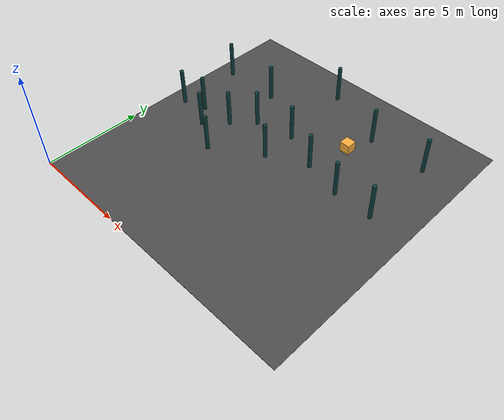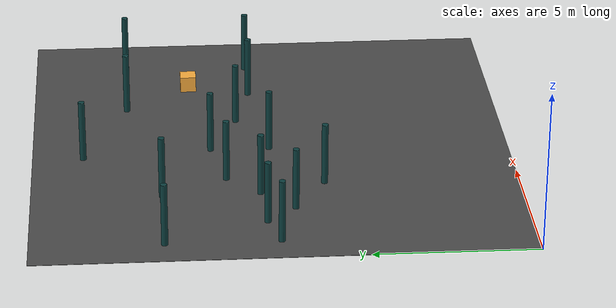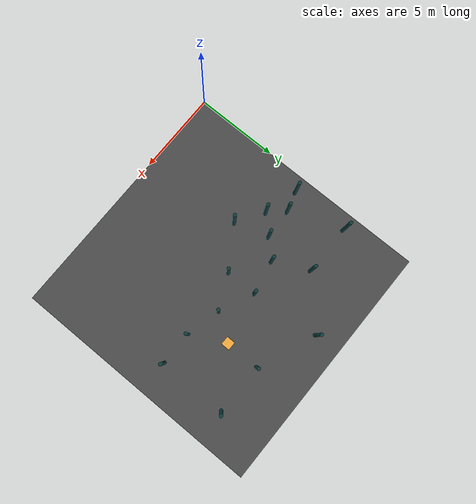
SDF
<sdf version="1.6">
 <world name="default">
  <model name="env_plane">
   <link name="link">
    <inertial>
     <mass>1</mass>
     <inertia><ixx>1</ixx><ixy>0</ixy><ixz>0</ixz><iyy>1</iyy><iyz>0</iyz><izz>1</izz></inertia>
    </inertial>
    <visual name="visual">
     <cast_shadows>0</cast_shadows>
     <geometry><box><size>15 15 0.01</size></box></geometry>
     <material>
      <script>
       <uri>model://asphalt_plane/materials/scripts</uri>
       <uri>model://asphalt_plane/materials/textures</uri>
       <name>vrc/asphalt</name>
      </script>
      <shader type="pixel"><normal_map>__default__</normal_map></shader>
      <diffuse>0.7 0.7 0.7 1</diffuse>
      <ambient>0.5 0.5 0.5 1</ambient>
      <specular>0.5 0.5 0.5 1</specular>
      <emissive>0.7 0.7 0.7 1</emissive>
     </material>
    </visual>
    <collision name="collision">
     <geometry><box><size>20 20 0.1</size></box></geometry>
     <surface>
      <friction>
       <ode><mu>1</mu><mu2>1</mu2><fdir1>0 0 0</fdir1><slip1>0</slip1><slip2>0</slip2></ode>
       <torsional>
        <coefficient>1</coefficient>
        <patch_radius>0</patch_radius>
        <surface_radius>0</surface_radius>
        <use_patch_radius>1</use_patch_radius>
        <ode><slip>0</slip></ode>
       </torsional>
      </friction>
      <bounce><restitution_coefficient>0</restitution_coefficient><threshold>1e+06</threshold></bounce>
      <contact>
       <collide_without_contact>0</collide_without_contact>
       <collide_without_contact_bitmask>1</collide_without_contact_bitmask>
       <collide_bitmask>1</collide_bitmask>
       <ode>
        <soft_cfm>0</soft_cfm>
        <soft_erp>0.2</soft_erp>
        <kp>1e+13</kp>
        <kd>1</kd>
        <max_vel>0.01</max_vel>
        <min_depth>0</min_depth>
       </ode>
       <bullet>
        <split_impulse>1</split_impulse>
        <split_impulse_penetration_threshold>-0.01</split_impulse_penetration_threshold>
        <soft_cfm>0</soft_cfm>
        <soft_erp>0.2</soft_erp>
        <kp>1e+13</kp>
        <kd>1</kd>
       </bullet>
      </contact>
     </surface>
    </collision>
   </link>
   <static>1</static>
   <pose>7.5 7.5 0 0 -0 0</pose>
  </model>
  <model name="obstacle_clone_2">
   <link name="link">
    <inertial>
     <mass>112.569</mass>
     <inertia><ixx>33.2512</ixx><ixy>0</ixy><ixz>0</ixz><iyy>33.2512</iyy><iyz>0</iyz><izz>0.537779</izz></inertia>
    </inertial>
    <visual name="visual">
     <geometry><cylinder><radius>0.1</radius><length>2</length></cylinder></geometry>
     <material>
      <script><name>Gazebo/Grey</name><uri>file://media/materials/scripts/gazebo.material</uri></script>
      <shader type="pixel"><normal_map>__default__</normal_map></shader>
      <ambient>0.05 0.25 0.25 1</ambient>
      <diffuse>0.3 0.3 0.3 1</diffuse>
      <specular>0.01 0.01 0.01 1</specular>
      <emissive>0.1 0.1 0.1 1</emissive>
      <lighting>1</lighting>
     </material>
    </visual>
    <collision name="collision">
     <geometry><cylinder><radius>0.097748</radius><length>1.87509</length></cylinder></geometry>
     <surface>
      <friction>
       <ode><mu>1</mu><mu2>1</mu2><fdir1>0 0 0</fdir1><slip1>0</slip1><slip2>0</slip2></ode>
       <torsional>
        <coefficient>1</coefficient>
        <patch_radius>0</patch_radius>
        <surface_radius>0</surface_radius>
        <use_patch_radius>1</use_patch_radius>
        <ode><slip>0</slip></ode>
       </torsional>
      </friction>
      <bounce><restitution_coefficient>0</restitution_coefficient><threshold>1e+06</threshold></bounce>
      <contact>
       <collide_without_contact>0</collide_without_contact>
       <collide_without_contact_bitmask>1</collide_without_contact_bitmask>
       <collide_bitmask>1</collide_bitmask>
       <ode>
        <soft_cfm>0</soft_cfm>
        <soft_erp>0.2</soft_erp>
        <kp>1e+13</kp>
        <kd>1</kd>
        <max_vel>0.01</max_vel>
        <min_depth>0</min_depth>
       </ode>
       <bullet>
        <split_impulse>1</split_impulse>
        <split_impulse_penetration_threshold>-0.01</split_impulse_penetration_threshold>
        <soft_cfm>0</soft_cfm>
        <soft_erp>0.2</soft_erp>
        <kp>1e+13</kp>
        <kd>1</kd>
       </bullet>
      </contact>
     </surface>
    </collision>
   </link>
   <static>0</static>
   <pose>2.19388 7.89591 0.987541 -5.3e-05 2.5e-05 0.005256</pose>
  </model>
  <model name="obstacle_clone_3">
   <link name="link">
    <inertial>
     <mass>112.569</mass>
     <inertia><ixx>33.2512</ixx><ixy>0</ixy><ixz>0</ixz><iyy>33.2512</iyy><iyz>0</iyz><izz>0.537779</izz></inertia>
    </inertial>
    <visual name="visual">
     <geometry><cylinder><radius>0.1</radius><length>2</length></cylinder></geometry>
     <material>
      <script><name>Gazebo/Grey</name><uri>file://media/materials/scripts/gazebo.material</uri></script>
      <shader type="pixel"><normal_map>__default__</normal_map></shader>
      <ambient>0.05 0.25 0.25 1</ambient>
      <diffuse>0.3 0.3 0.3 1</diffuse>
      <specular>0.01 0.01 0.01 1</specular>
      <emissive>0.1 0.1 0.1 1</emissive>
      <lighting>1</lighting>
     </material>
    </visual>
    <collision name="collision">
     <geometry><cylinder><radius>0.097748</radius><length>1.87509</length></cylinder></geometry>
     <surface>
      <friction>
       <ode><mu>1</mu><mu2>1</mu2><fdir1>0 0 0</fdir1><slip1>0</slip1><slip2>0</slip2></ode>
       <torsional>
        <coefficient>1</coefficient>
        <patch_radius>0</patch_radius>
        <surface_radius>0</surface_radius>
        <use_patch_radius>1</use_patch_radius>
        <ode><slip>0</slip></ode>
       </torsional>
      </friction>
      <bounce><restitution_coefficient>0</restitution_coefficient><threshold>1e+06</threshold></bounce>
      <contact>
       <collide_without_contact>0</collide_without_contact>
       <collide_without_contact_bitmask>1</collide_without_contact_bitmask>
       <collide_bitmask>1</collide_bitmask>
       <ode>
        <soft_cfm>0</soft_cfm>
        <soft_erp>0.2</soft_erp>
        <kp>1e+13</kp>
        <kd>1</kd>
        <max_vel>0.01</max_vel>
        <min_depth>0</min_depth>
       </ode>
       <bullet>
        <split_impulse>1</split_impulse>
        <split_impulse_penetration_threshold>-0.01</split_impulse_penetration_threshold>
        <soft_cfm>0</soft_cfm>
        <soft_erp>0.2</soft_erp>
        <kp>1e+13</kp>
        <kd>1</kd>
       </bullet>
      </contact>
     </surface>
    </collision>
   </link>
   <static>0</static>
   <pose>1.00012 11.0001 0.98755 -5.1e-05 2.3e-05 0.004052</pose>
  </model>
  <model name="obstacle_clone_5">
   <link name="link">
    <inertial>
     <mass>112.569</mass>
     <inertia><ixx>33.2512</ixx><ixy>0</ixy><ixz>0</ixz><iyy>33.2512</iyy><iyz>0</iyz><izz>0.537779</izz></inertia>
    </inertial>
    <visual name="visual">
     <geometry><cylinder><radius>0.1</radius><length>2</length></cylinder></geometry>
     <material>
      <script><name>Gazebo/Grey</name><uri>file://media/materials/scripts/gazebo.material</uri></script>
      <shader type="pixel"><normal_map>__default__</normal_map></shader>
      <ambient>0.05 0.25 0.25 1</ambient>
      <diffuse>0.3 0.3 0.3 1</diffuse>
      <specular>0.01 0.01 0.01 1</specular>
      <emissive>0.1 0.1 0.1 1</emissive>
      <lighting>1</lighting>
     </material>
    </visual>
    <collision name="collision">
     <geometry><cylinder><radius>0.097748</radius><length>1.87509</length></cylinder></geometry>
     <surface>
      <friction>
       <ode><mu>1</mu><mu2>1</mu2><fdir1>0 0 0</fdir1><slip1>0</slip1><slip2>0</slip2></ode>
       <torsional>
        <coefficient>1</coefficient>
        <patch_radius>0</patch_radius>
        <surface_radius>0</surface_radius>
        <use_patch_radius>1</use_patch_radius>
        <ode><slip>0</slip></ode>
       </torsional>
      </friction>
      <bounce><restitution_coefficient>0</restitution_coefficient><threshold>1e+06</threshold></bounce>
      <contact>
       <collide_without_contact>0</collide_without_contact>
       <collide_without_contact_bitmask>1</collide_without_contact_bitmask>
       <collide_bitmask>1</collide_bitmask>
       <ode>
        <soft_cfm>0</soft_cfm>
        <soft_erp>0.2</soft_erp>
        <kp>1e+13</kp>
        <kd>1</kd>
        <max_vel>0.01</max_vel>
        <min_depth>0</min_depth>
       </ode>
       <bullet>
        <split_impulse>1</split_impulse>
        <split_impulse_penetration_threshold>-0.01</split_impulse_penetration_threshold>
        <soft_cfm>0</soft_cfm>
        <soft_erp>0.2</soft_erp>
        <kp>1e+13</kp>
        <kd>1</kd>
       </bullet>
      </contact>
     </surface>
    </collision>
   </link>
   <static>0</static>
   <pose>5.00028 9.00005 0.987541 -5.5e-05 2.6e-05 0.005948</pose>
  </model>
  <model name="obstacle_clone_6">
   <link name="link">
    <inertial>
     <mass>112.569</mass>
     <inertia><ixx>33.2512</ixx><ixy>0</ixy><ixz>0</ixz><iyy>33.2512</iyy><iyz>0</iyz><izz>0.537779</izz></inertia>
    </inertial>
    <visual name="visual">
     <geometry><cylinder><radius>0.1</radius><length>2</length></cylinder></geometry>
     <material>
      <script><name>Gazebo/Grey</name><uri>file://media/materials/scripts/gazebo.material</uri></script>
      <shader type="pixel"><normal_map>__default__</normal_map></shader>
      <ambient>0.05 0.25 0.25 1</ambient>
      <diffuse>0.3 0.3 0.3 1</diffuse>
      <specular>0.01 0.01 0.01 1</specular>
      <emissive>0.1 0.1 0.1 1</emissive>
      <lighting>1</lighting>
     </material>
    </visual>
    <collision name="collision">
     <geometry><cylinder><radius>0.097748</radius><length>1.87509</length></cylinder></geometry>
     <surface>
      <friction>
       <ode><mu>1</mu><mu2>1</mu2><fdir1>0 0 0</fdir1><slip1>0</slip1><slip2>0</slip2></ode>
       <torsional>
        <coefficient>1</coefficient>
        <patch_radius>0</patch_radius>
        <surface_radius>0</surface_radius>
        <use_patch_radius>1</use_patch_radius>
        <ode><slip>0</slip></ode>
       </torsional>
      </friction>
      <bounce><restitution_coefficient>0</restitution_coefficient><threshold>1e+06</threshold></bounce>
      <contact>
       <collide_without_contact>0</collide_without_contact>
       <collide_without_contact_bitmask>1</collide_without_contact_bitmask>
       <collide_bitmask>1</collide_bitmask>
       <ode>
        <soft_cfm>0</soft_cfm>
        <soft_erp>0.2</soft_erp>
        <kp>1e+13</kp>
        <kd>1</kd>
        <max_vel>0.01</max_vel>
        <min_depth>0</min_depth>
       </ode>
       <bullet>
        <split_impulse>1</split_impulse>
        <split_impulse_penetration_threshold>-0.01</split_impulse_penetration_threshold>
        <soft_cfm>0</soft_cfm>
        <soft_erp>0.2</soft_erp>
        <kp>1e+13</kp>
        <kd>1</kd>
       </bullet>
      </contact>
     </surface>
    </collision>
   </link>
   <static>0</static>
   <pose>4.00028 8.00005 0.987542 -5.9e-05 2.6e-05 0.005808</pose>
  </model>
  <model name="obstacle_clone_8">
   <link name="link">
    <inertial>
     <mass>112.569</mass>
     <inertia><ixx>33.2512</ixx><ixy>0</ixy><ixz>0</ixz><iyy>33.2512</iyy><iyz>0</iyz><izz>0.537779</izz></inertia>
    </inertial>
    <visual name="visual">
     <geometry><cylinder><radius>0.1</radius><length>2</length></cylinder></geometry>
     <material>
      <script><name>Gazebo/Grey</name><uri>file://media/materials/scripts/gazebo.material</uri></script>
      <shader type="pixel"><normal_map>__default__</normal_map></shader>
      <ambient>0.05 0.25 0.25 1</ambient>
      <diffuse>0.3 0.3 0.3 1</diffuse>
      <specular>0.01 0.01 0.01 1</specular>
      <emissive>0.1 0.1 0.1 1</emissive>
      <lighting>1</lighting>
     </material>
    </visual>
    <collision name="collision">
     <geometry><cylinder><radius>0.097748</radius><length>1.87509</length></cylinder></geometry>
     <surface>
      <friction>
       <ode><mu>1</mu><mu2>1</mu2><fdir1>0 0 0</fdir1><slip1>0</slip1><slip2>0</slip2></ode>
       <torsional>
        <coefficient>1</coefficient>
        <patch_radius>0</patch_radius>
        <surface_radius>0</surface_radius>
        <use_patch_radius>1</use_patch_radius>
        <ode><slip>0</slip></ode>
       </torsional>
      </friction>
      <bounce><restitution_coefficient>0</restitution_coefficient><threshold>1e+06</threshold></bounce>
      <contact>
       <collide_without_contact>0</collide_without_contact>
       <collide_without_contact_bitmask>1</collide_without_contact_bitmask>
       <collide_bitmask>1</collide_bitmask>
       <ode>
        <soft_cfm>0</soft_cfm>
        <soft_erp>0.2</soft_erp>
        <kp>1e+13</kp>
        <kd>1</kd>
        <max_vel>0.01</max_vel>
        <min_depth>0</min_depth>
       </ode>
       <bullet>
        <split_impulse>1</split_impulse>
        <split_impulse_penetration_threshold>-0.01</split_impulse_penetration_threshold>
        <soft_cfm>0</soft_cfm>
        <soft_erp>0.2</soft_erp>
        <kp>1e+13</kp>
        <kd>1</kd>
       </bullet>
      </contact>
     </surface>
    </collision>
   </link>
   <static>0</static>
   <pose>7.00028 9.40156 0.987541 -5.2e-05 2.3e-05 0.00596</pose>
  </model>
  <model name="obstacle_clone_10">
   <link name="link">
    <inertial>
     <mass>112.569</mass>
     <inertia><ixx>33.2512</ixx><ixy>0</ixy><ixz>0</ixz><iyy>33.2512</iyy><iyz>0</iyz><izz>0.537779</izz></inertia>
    </inertial>
    <visual name="visual">
     <geometry><cylinder><radius>0.1</radius><length>2</length></cylinder></geometry>
     <material>
      <script><name>Gazebo/Grey</name><uri>file://media/materials/scripts/gazebo.material</uri></script>
      <shader type="pixel"><normal_map>__default__</normal_map></shader>
      <ambient>0.05 0.25 0.25 1</ambient>
      <diffuse>0.3 0.3 0.3 1</diffuse>
      <specular>0.01 0.01 0.01 1</specular>
      <emissive>0.1 0.1 0.1 1</emissive>
      <lighting>1</lighting>
     </material>
    </visual>
    <collision name="collision">
     <geometry><cylinder><radius>0.097748</radius><length>1.87509</length></cylinder></geometry>
     <surface>
      <friction>
       <ode><mu>1</mu><mu2>1</mu2><fdir1>0 0 0</fdir1><slip1>0</slip1><slip2>0</slip2></ode>
       <torsional>
        <coefficient>1</coefficient>
        <patch_radius>0</patch_radius>
        <surface_radius>0</surface_radius>
        <use_patch_radius>1</use_patch_radius>
        <ode><slip>0</slip></ode>
       </torsional>
      </friction>
      <bounce><restitution_coefficient>0</restitution_coefficient><threshold>1e+06</threshold></bounce>
      <contact>
       <collide_without_contact>0</collide_without_contact>
       <collide_without_contact_bitmask>1</collide_without_contact_bitmask>
       <collide_bitmask>1</collide_bitmask>
       <ode>
        <soft_cfm>0</soft_cfm>
        <soft_erp>0.2</soft_erp>
        <kp>1e+13</kp>
        <kd>1</kd>
        <max_vel>0.01</max_vel>
        <min_depth>0</min_depth>
       </ode>
       <bullet>
        <split_impulse>1</split_impulse>
        <split_impulse_penetration_threshold>-0.01</split_impulse_penetration_threshold>
        <soft_cfm>0</soft_cfm>
        <soft_erp>0.2</soft_erp>
        <kp>1e+13</kp>
        <kd>1</kd>
       </bullet>
      </contact>
     </surface>
    </collision>
   </link>
   <static>0</static>
   <pose>4.58014 6.00006 0.987541 -5.5e-05 2.6e-05 0.005748</pose>
  </model>
  <model name="obstacle_clone_12">
   <link name="link">
    <inertial>
     <mass>112.569</mass>
     <inertia><ixx>33.2512</ixx><ixy>0</ixy><ixz>0</ixz><iyy>33.2512</iyy><iyz>0</iyz><izz>0.537779</izz></inertia>
    </inertial>
    <visual name="visual">
     <geometry><cylinder><radius>0.1</radius><length>2</length></cylinder></geometry>
     <material>
      <script><name>Gazebo/Grey</name><uri>file://media/materials/scripts/gazebo.material</uri></script>
      <shader type="pixel"><normal_map>__default__</normal_map></shader>
      <ambient>0.05 0.25 0.25 1</ambient>
      <diffuse>0.3 0.3 0.3 1</diffuse>
      <specular>0.01 0.01 0.01 1</specular>
      <emissive>0.1 0.1 0.1 1</emissive>
      <lighting>1</lighting>
     </material>
    </visual>
    <collision name="collision">
     <geometry><cylinder><radius>0.097748</radius><length>1.87509</length></cylinder></geometry>
     <surface>
      <friction>
       <ode><mu>1</mu><mu2>1</mu2><fdir1>0 0 0</fdir1><slip1>0</slip1><slip2>0</slip2></ode>
       <torsional>
        <coefficient>1</coefficient>
        <patch_radius>0</patch_radius>
        <surface_radius>0</surface_radius>
        <use_patch_radius>1</use_patch_radius>
        <ode><slip>0</slip></ode>
       </torsional>
      </friction>
      <bounce><restitution_coefficient>0</restitution_coefficient><threshold>1e+06</threshold></bounce>
      <contact>
       <collide_without_contact>0</collide_without_contact>
       <collide_without_contact_bitmask>1</collide_without_contact_bitmask>
       <collide_bitmask>1</collide_bitmask>
       <ode>
        <soft_cfm>0</soft_cfm>
        <soft_erp>0.2</soft_erp>
        <kp>1e+13</kp>
        <kd>1</kd>
        <max_vel>0.01</max_vel>
        <min_depth>0</min_depth>
       </ode>
       <bullet>
        <split_impulse>1</split_impulse>
        <split_impulse_penetration_threshold>-0.01</split_impulse_penetration_threshold>
        <soft_cfm>0</soft_cfm>
        <soft_erp>0.2</soft_erp>
        <kp>1e+13</kp>
        <kd>1</kd>
       </bullet>
      </contact>
     </surface>
    </collision>
   </link>
   <static>0</static>
   <pose>9.00028 8.50929 0.987541 -5.1e-05 2.3e-05 0.005891</pose>
  </model>
  <model name="obstacle_clone_15">
   <link name="link">
    <inertial>
     <mass>112.569</mass>
     <inertia><ixx>33.2512</ixx><ixy>0</ixy><ixz>0</ixz><iyy>33.2512</iyy><iyz>0</iyz><izz>0.537779</izz></inertia>
    </inertial>
    <visual name="visual">
     <geometry><cylinder><radius>0.1</radius><length>2</length></cylinder></geometry>
     <material>
      <script><name>Gazebo/Grey</name><uri>file://media/materials/scripts/gazebo.material</uri></script>
      <shader type="pixel"><normal_map>__default__</normal_map></shader>
      <ambient>0.05 0.25 0.25 1</ambient>
      <diffuse>0.3 0.3 0.3 1</diffuse>
      <specular>0.01 0.01 0.01 1</specular>
      <emissive>0.1 0.1 0.1 1</emissive>
      <lighting>1</lighting>
     </material>
    </visual>
    <collision name="collision">
     <geometry><cylinder><radius>0.097748</radius><length>1.87509</length></cylinder></geometry>
     <surface>
      <friction>
       <ode><mu>1</mu><mu2>1</mu2><fdir1>0 0 0</fdir1><slip1>0</slip1><slip2>0</slip2></ode>
       <torsional>
        <coefficient>1</coefficient>
        <patch_radius>0</patch_radius>
        <surface_radius>0</surface_radius>
        <use_patch_radius>1</use_patch_radius>
        <ode><slip>0</slip></ode>
       </torsional>
      </friction>
      <bounce><restitution_coefficient>0</restitution_coefficient><threshold>1e+06</threshold></bounce>
      <contact>
       <collide_without_contact>0</collide_without_contact>
       <collide_without_contact_bitmask>1</collide_without_contact_bitmask>
       <collide_bitmask>1</collide_bitmask>
       <ode>
        <soft_cfm>0</soft_cfm>
        <soft_erp>0.2</soft_erp>
        <kp>1e+13</kp>
        <kd>1</kd>
        <max_vel>0.01</max_vel>
        <min_depth>0</min_depth>
       </ode>
       <bullet>
        <split_impulse>1</split_impulse>
        <split_impulse_penetration_threshold>-0.01</split_impulse_penetration_threshold>
        <soft_cfm>0</soft_cfm>
        <soft_erp>0.2</soft_erp>
        <kp>1e+13</kp>
        <kd>1</kd>
       </bullet>
      </contact>
     </surface>
    </collision>
   </link>
   <static>0</static>
   <pose>0.99999 7.55629 0.987545 -1.5e-05 -4.6e-05 0.003617</pose>
  </model>
  <model name="obstacle_clone_16">
   <link name="link">
    <inertial>
     <mass>112.569</mass>
     <inertia><ixx>33.2512</ixx><ixy>0</ixy><ixz>0</ixz><iyy>33.2512</iyy><iyz>0</iyz><izz>0.537779</izz></inertia>
    </inertial>
    <visual name="visual">
     <geometry><cylinder><radius>0.1</radius><length>2</length></cylinder></geometry>
     <material>
      <script><name>Gazebo/Grey</name><uri>file://media/materials/scripts/gazebo.material</uri></script>
      <shader type="pixel"><normal_map>__default__</normal_map></shader>
      <ambient>0.05 0.25 0.25 1</ambient>
      <diffuse>0.3 0.3 0.3 1</diffuse>
      <specular>0.01 0.01 0.01 1</specular>
      <emissive>0.1 0.1 0.1 1</emissive>
      <lighting>1</lighting>
     </material>
    </visual>
    <collision name="collision">
     <geometry><cylinder><radius>0.097748</radius><length>1.87509</length></cylinder></geometry>
     <surface>
      <friction>
       <ode><mu>1</mu><mu2>1</mu2><fdir1>0 0 0</fdir1><slip1>0</slip1><slip2>0</slip2></ode>
       <torsional>
        <coefficient>1</coefficient>
        <patch_radius>0</patch_radius>
        <surface_radius>0</surface_radius>
        <use_patch_radius>1</use_patch_radius>
        <ode><slip>0</slip></ode>
       </torsional>
      </friction>
      <bounce><restitution_coefficient>0</restitution_coefficient><threshold>1e+06</threshold></bounce>
      <contact>
       <collide_without_contact>0</collide_without_contact>
       <collide_without_contact_bitmask>1</collide_without_contact_bitmask>
       <collide_bitmask>1</collide_bitmask>
       <ode>
        <soft_cfm>0</soft_cfm>
        <soft_erp>0.2</soft_erp>
        <kp>1e+13</kp>
        <kd>1</kd>
        <max_vel>0.01</max_vel>
        <min_depth>0</min_depth>
       </ode>
       <bullet>
        <split_impulse>1</split_impulse>
        <split_impulse_penetration_threshold>-0.01</split_impulse_penetration_threshold>
        <soft_cfm>0</soft_cfm>
        <soft_erp>0.2</soft_erp>
        <kp>1e+13</kp>
        <kd>1</kd>
       </bullet>
      </contact>
     </surface>
    </collision>
   </link>
   <static>0</static>
   <pose>4.00024 11 0.987541 -5.8e-05 2.4e-05 0.005531</pose>
  </model>
  <model name="obstacle_clone_17">
   <link name="link">
    <inertial>
     <mass>112.569</mass>
     <inertia><ixx>33.2512</ixx><ixy>0</ixy><ixz>0</ixz><iyy>33.2512</iyy><iyz>0</iyz><izz>0.537779</izz></inertia>
    </inertial>
    <visual name="visual">
     <geometry><cylinder><radius>0.1</radius><length>2</length></cylinder></geometry>
     <material>
      <script><name>Gazebo/Grey</name><uri>file://media/materials/scripts/gazebo.material</uri></script>
      <shader type="pixel"><normal_map>__default__</normal_map></shader>
      <ambient>0.05 0.25 0.25 1</ambient>
      <diffuse>0.3 0.3 0.3 1</diffuse>
      <specular>0.01 0.01 0.01 1</specular>
      <emissive>0.1 0.1 0.1 1</emissive>
      <lighting>1</lighting>
     </material>
    </visual>
    <collision name="collision">
     <geometry><cylinder><radius>0.097748</radius><length>1.87509</length></cylinder></geometry>
     <surface>
      <friction>
       <ode><mu>1</mu><mu2>1</mu2><fdir1>0 0 0</fdir1><slip1>0</slip1><slip2>0</slip2></ode>
       <torsional>
        <coefficient>1</coefficient>
        <patch_radius>0</patch_radius>
        <surface_radius>0</surface_radius>
        <use_patch_radius>1</use_patch_radius>
        <ode><slip>0</slip></ode>
       </torsional>
      </friction>
      <bounce><restitution_coefficient>0</restitution_coefficient><threshold>1e+06</threshold></bounce>
      <contact>
       <collide_without_contact>0</collide_without_contact>
       <collide_without_contact_bitmask>1</collide_without_contact_bitmask>
       <collide_bitmask>1</collide_bitmask>
       <ode>
        <soft_cfm>0</soft_cfm>
        <soft_erp>0.2</soft_erp>
        <kp>1e+13</kp>
        <kd>1</kd>
        <max_vel>0.01</max_vel>
        <min_depth>0</min_depth>
       </ode>
       <bullet>
        <split_impulse>1</split_impulse>
        <split_impulse_penetration_threshold>-0.01</split_impulse_penetration_threshold>
        <soft_cfm>0</soft_cfm>
        <soft_erp>0.2</soft_erp>
        <kp>1e+13</kp>
        <kd>1</kd>
       </bullet>
      </contact>
     </surface>
    </collision>
   </link>
   <static>0</static>
   <pose>7.00026 7.55538 0.987551 -5.7e-05 2.6e-05 0.005683</pose>
  </model>
  <model name="obstacle_clone_18">
   <link name="link">
    <inertial>
     <mass>112.569</mass>
     <inertia><ixx>33.2512</ixx><ixy>0</ixy><ixz>0</ixz><iyy>33.2512</iyy><iyz>0</iyz><izz>0.537779</izz></inertia>
    </inertial>
    <visual name="visual">
     <geometry><cylinder><radius>0.1</radius><length>2</length></cylinder></geometry>
     <material>
      <script><name>Gazebo/Grey</name><uri>file://media/materials/scripts/gazebo.material</uri></script>
      <shader type="pixel"><normal_map>__default__</normal_map></shader>
      <ambient>0.05 0.25 0.25 1</ambient>
      <diffuse>0.3 0.3 0.3 1</diffuse>
      <specular>0.01 0.01 0.01 1</specular>
      <emissive>0.1 0.1 0.1 1</emissive>
      <lighting>1</lighting>
     </material>
    </visual>
    <collision name="collision">
     <geometry><cylinder><radius>0.097748</radius><length>1.87509</length></cylinder></geometry>
     <surface>
      <friction>
       <ode><mu>1</mu><mu2>1</mu2><fdir1>0 0 0</fdir1><slip1>0</slip1><slip2>0</slip2></ode>
       <torsional>
        <coefficient>1</coefficient>
        <patch_radius>0</patch_radius>
        <surface_radius>0</surface_radius>
        <use_patch_radius>1</use_patch_radius>
        <ode><slip>0</slip></ode>
       </torsional>
      </friction>
      <bounce><restitution_coefficient>0</restitution_coefficient><threshold>1e+06</threshold></bounce>
      <contact>
       <collide_without_contact>0</collide_without_contact>
       <collide_without_contact_bitmask>1</collide_without_contact_bitmask>
       <collide_bitmask>1</collide_bitmask>
       <ode>
        <soft_cfm>0</soft_cfm>
        <soft_erp>0.2</soft_erp>
        <kp>1e+13</kp>
        <kd>1</kd>
        <max_vel>0.01</max_vel>
        <min_depth>0</min_depth>
       </ode>
       <bullet>
        <split_impulse>1</split_impulse>
        <split_impulse_penetration_threshold>-0.01</split_impulse_penetration_threshold>
        <soft_cfm>0</soft_cfm>
        <soft_erp>0.2</soft_erp>
        <kp>1e+13</kp>
        <kd>1</kd>
       </bullet>
      </contact>
     </surface>
    </collision>
   </link>
   <static>0</static>
   <pose>11.0002 8.00005 0.98755 -5.1e-05 2.2e-05 0.005797</pose>
  </model>
  <model name="obstacle_clone_19">
   <link name="link">
    <inertial>
     <mass>112.569</mass>
     <inertia><ixx>33.2512</ixx><ixy>0</ixy><ixz>0</ixz><iyy>33.2512</iyy><iyz>0</iyz><izz>0.537779</izz></inertia>
    </inertial>
    <visual name="visual">
     <geometry><cylinder><radius>0.1</radius><length>2</length></cylinder></geometry>
     <material>
      <script><name>Gazebo/Grey</name><uri>file://media/materials/scripts/gazebo.material</uri></script>
      <shader type="pixel"><normal_map>__default__</normal_map></shader>
      <ambient>0.05 0.25 0.25 1</ambient>
      <diffuse>0.3 0.3 0.3 1</diffuse>
      <specular>0.01 0.01 0.01 1</specular>
      <emissive>0.1 0.1 0.1 1</emissive>
      <lighting>1</lighting>
     </material>
    </visual>
    <collision name="collision">
     <geometry><cylinder><radius>0.097748</radius><length>1.87509</length></cylinder></geometry>
     <surface>
      <friction>
       <ode><mu>1</mu><mu2>1</mu2><fdir1>0 0 0</fdir1><slip1>0</slip1><slip2>0</slip2></ode>
       <torsional>
        <coefficient>1</coefficient>
        <patch_radius>0</patch_radius>
        <surface_radius>0</surface_radius>
        <use_patch_radius>1</use_patch_radius>
        <ode><slip>0</slip></ode>
       </torsional>
      </friction>
      <bounce><restitution_coefficient>0</restitution_coefficient><threshold>1e+06</threshold></bounce>
      <contact>
       <collide_without_contact>0</collide_without_contact>
       <collide_without_contact_bitmask>1</collide_without_contact_bitmask>
       <collide_bitmask>1</collide_bitmask>
       <ode>
        <soft_cfm>0</soft_cfm>
        <soft_erp>0.2</soft_erp>
        <kp>1e+13</kp>
        <kd>1</kd>
        <max_vel>0.01</max_vel>
        <min_depth>0</min_depth>
       </ode>
       <bullet>
        <split_impulse>1</split_impulse>
        <split_impulse_penetration_threshold>-0.01</split_impulse_penetration_threshold>
        <soft_cfm>0</soft_cfm>
        <soft_erp>0.2</soft_erp>
        <kp>1e+13</kp>
        <kd>1</kd>
       </bullet>
      </contact>
     </surface>
    </collision>
   </link>
   <static>0</static>
   <pose>10.0001 12 0.987545 -4.2e-05 2.2e-05 0.003629</pose>
  </model>
  <model name="obstacle_clone_20">
   <link name="link">
    <inertial>
     <mass>112.569</mass>
     <inertia><ixx>33.2512</ixx><ixy>0</ixy><ixz>0</ixz><iyy>33.2512</iyy><iyz>0</iyz><izz>0.537779</izz></inertia>
    </inertial>
    <visual name="visual">
     <geometry><cylinder><radius>0.1</radius><length>2</length></cylinder></geometry>
     <material>
      <script><name>Gazebo/Grey</name><uri>file://media/materials/scripts/gazebo.material</uri></script>
      <shader type="pixel"><normal_map>__default__</normal_map></shader>
      <ambient>0.05 0.25 0.25 1</ambient>
      <diffuse>0.3 0.3 0.3 1</diffuse>
      <specular>0.01 0.01 0.01 1</specular>
      <emissive>0.1 0.1 0.1 1</emissive>
      <lighting>1</lighting>
     </material>
    </visual>
    <collision name="collision">
     <geometry><cylinder><radius>0.097748</radius><length>1.87509</length></cylinder></geometry>
     <surface>
      <friction>
       <ode><mu>1</mu><mu2>1</mu2><fdir1>0 0 0</fdir1><slip1>0</slip1><slip2>0</slip2></ode>
       <torsional>
        <coefficient>1</coefficient>
        <patch_radius>0</patch_radius>
        <surface_radius>0</surface_radius>
        <use_patch_radius>1</use_patch_radius>
        <ode><slip>0</slip></ode>
       </torsional>
      </friction>
      <bounce><restitution_coefficient>0</restitution_coefficient><threshold>1e+06</threshold></bounce>
      <contact>
       <collide_without_contact>0</collide_without_contact>
       <collide_without_contact_bitmask>1</collide_without_contact_bitmask>
       <collide_bitmask>1</collide_bitmask>
       <ode>
        <soft_cfm>0</soft_cfm>
        <soft_erp>0.2</soft_erp>
        <kp>1e+13</kp>
        <kd>1</kd>
        <max_vel>0.01</max_vel>
        <min_depth>0</min_depth>
       </ode>
       <bullet>
        <split_impulse>1</split_impulse>
        <split_impulse_penetration_threshold>-0.01</split_impulse_penetration_threshold>
        <soft_cfm>0</soft_cfm>
        <soft_erp>0.2</soft_erp>
        <kp>1e+13</kp>
        <kd>1</kd>
       </bullet>
      </contact>
     </surface>
    </collision>
   </link>
   <static>0</static>
   <pose>13.0001 12 0.987545 -2.7e-05 4.2e-05 0.003552</pose>
  </model>
  <model name="obstacle_clone_27">
   <link name="link">
    <inertial>
     <mass>112.569</mass>
     <inertia><ixx>33.2512</ixx><ixy>0</ixy><ixz>0</ixz><iyy>33.2512</iyy><iyz>0</iyz><izz>0.537779</izz></inertia>
    </inertial>
    <visual name="visual">
     <geometry><cylinder><radius>0.1</radius><length>2</length></cylinder></geometry>
     <material>
      <script><name>Gazebo/Grey</name><uri>file://media/materials/scripts/gazebo.material</uri></script>
      <shader type="pixel"><normal_map>__default__</normal_map></shader>
      <ambient>0.05 0.25 0.25 1</ambient>
      <diffuse>0.3 0.3 0.3 1</diffuse>
      <specular>0.01 0.01 0.01 1</specular>
      <emissive>0.1 0.1 0.1 1</emissive>
      <lighting>1</lighting>
     </material>
    </visual>
    <collision name="collision">
     <geometry><cylinder><radius>0.097748</radius><length>1.87509</length></cylinder></geometry>
     <surface>
      <friction>
       <ode><mu>1</mu><mu2>1</mu2><fdir1>0 0 0</fdir1><slip1>0</slip1><slip2>0</slip2></ode>
       <torsional>
        <coefficient>1</coefficient>
        <patch_radius>0</patch_radius>
        <surface_radius>0</surface_radius>
        <use_patch_radius>1</use_patch_radius>
        <ode><slip>0</slip></ode>
       </torsional>
      </friction>
      <bounce><restitution_coefficient>0</restitution_coefficient><threshold>1e+06</threshold></bounce>
      <contact>
       <collide_without_contact>0</collide_without_contact>
       <collide_without_contact_bitmask>1</collide_without_contact_bitmask>
       <collide_bitmask>1</collide_bitmask>
       <ode>
        <soft_cfm>0</soft_cfm>
        <soft_erp>0.2</soft_erp>
        <kp>1e+13</kp>
        <kd>1</kd>
        <max_vel>0.01</max_vel>
        <min_depth>0</min_depth>
       </ode>
       <bullet>
        <split_impulse>1</split_impulse>
        <split_impulse_penetration_threshold>-0.01</split_impulse_penetration_threshold>
        <soft_cfm>0</soft_cfm>
        <soft_erp>0.2</soft_erp>
        <kp>1e+13</kp>
        <kd>1</kd>
       </bullet>
      </contact>
     </surface>
    </collision>
   </link>
   <static>0</static>
   <pose>13.0002 8.00007 0.987542 -6.4e-05 2.8e-05 0.005209</pose>
  </model>
  <model name="obstacle_clone_28">
   <link name="link">
    <inertial>
     <mass>112.569</mass>
     <inertia><ixx>33.2512</ixx><ixy>0</ixy><ixz>0</ixz><iyy>33.2512</iyy><iyz>0</iyz><izz>0.537779</izz></inertia>
    </inertial>
    <visual name="visual">
     <geometry><cylinder><radius>0.1</radius><length>2</length></cylinder></geometry>
     <material>
      <script><name>Gazebo/Grey</name><uri>file://media/materials/scripts/gazebo.material</uri></script>
      <shader type="pixel"><normal_map>__default__</normal_map></shader>
      <ambient>0.05 0.25 0.25 1</ambient>
      <diffuse>0.3 0.3 0.3 1</diffuse>
      <specular>0.01 0.01 0.01 1</specular>
      <emissive>0.1 0.1 0.1 1</emissive>
      <lighting>1</lighting>
     </material>
    </visual>
    <collision name="collision">
     <geometry><cylinder><radius>0.097748</radius><length>1.87509</length></cylinder></geometry>
     <surface>
      <friction>
       <ode><mu>1</mu><mu2>1</mu2><fdir1>0 0 0</fdir1><slip1>0</slip1><slip2>0</slip2></ode>
       <torsional>
        <coefficient>1</coefficient>
        <patch_radius>0</patch_radius>
        <surface_radius>0</surface_radius>
        <use_patch_radius>1</use_patch_radius>
        <ode><slip>0</slip></ode>
       </torsional>
      </friction>
      <bounce><restitution_coefficient>0</restitution_coefficient><threshold>1e+06</threshold></bounce>
      <contact>
       <collide_without_contact>0</collide_without_contact>
       <collide_without_contact_bitmask>1</collide_without_contact_bitmask>
       <collide_bitmask>1</collide_bitmask>
       <ode>
        <soft_cfm>0</soft_cfm>
        <soft_erp>0.2</soft_erp>
        <kp>1e+13</kp>
        <kd>1</kd>
        <max_vel>0.01</max_vel>
        <min_depth>0</min_depth>
       </ode>
       <bullet>
        <split_impulse>1</split_impulse>
        <split_impulse_penetration_threshold>-0.01</split_impulse_penetration_threshold>
        <soft_cfm>0</soft_cfm>
        <soft_erp>0.2</soft_erp>
        <kp>1e+13</kp>
        <kd>1</kd>
       </bullet>
      </contact>
     </surface>
    </collision>
   </link>
   <static>0</static>
   <pose>6.62099 13.408 0.987545 -4.5e-05 2.2e-05 0.003768</pose>
  </model>
  <model name="obstacle_clone_30">
   <link name="link">
    <inertial>
     <mass>112.569</mass>
     <inertia><ixx>33.2512</ixx><ixy>0</ixy><ixz>0</ixz><iyy>33.2512</iyy><iyz>0</iyz><izz>0.537779</izz></inertia>
    </inertial>
    <visual name="visual">
     <geometry><cylinder><radius>0.1</radius><length>2</length></cylinder></geometry>
     <material>
      <script><name>Gazebo/Grey</name><uri>file://media/materials/scripts/gazebo.material</uri></script>
      <shader type="pixel"><normal_map>__default__</normal_map></shader>
      <ambient>0.05 0.25 0.25 1</ambient>
      <diffuse>0.3 0.3 0.3 1</diffuse>
      <specular>0.01 0.01 0.01 1</specular>
      <emissive>0.1 0.1 0.1 1</emissive>
      <lighting>1</lighting>
     </material>
    </visual>
    <collision name="collision">
     <geometry><cylinder><radius>0.097748</radius><length>1.87509</length></cylinder></geometry>
     <surface>
      <friction>
       <ode><mu>1</mu><mu2>1</mu2><fdir1>0 0 0</fdir1><slip1>0</slip1><slip2>0</slip2></ode>
       <torsional>
        <coefficient>1</coefficient>
        <patch_radius>0</patch_radius>
        <surface_radius>0</surface_radius>
        <use_patch_radius>1</use_patch_radius>
        <ode><slip>0</slip></ode>
       </torsional>
      </friction>
      <bounce><restitution_coefficient>0</restitution_coefficient><threshold>1e+06</threshold></bounce>
      <contact>
       <collide_without_contact>0</collide_without_contact>
       <collide_without_contact_bitmask>1</collide_without_contact_bitmask>
       <collide_bitmask>1</collide_bitmask>
       <ode>
        <soft_cfm>0</soft_cfm>
        <soft_erp>0.2</soft_erp>
        <kp>1e+13</kp>
        <kd>1</kd>
        <max_vel>0.01</max_vel>
        <min_depth>0</min_depth>
       </ode>
       <bullet>
        <split_impulse>1</split_impulse>
        <split_impulse_penetration_threshold>-0.01</split_impulse_penetration_threshold>
        <soft_cfm>0</soft_cfm>
        <soft_erp>0.2</soft_erp>
        <kp>1e+13</kp>
        <kd>1</kd>
       </bullet>
      </contact>
     </surface>
    </collision>
   </link>
   <static>0</static>
   <pose>3.0002 7.00007 0.987542 -5.8e-05 2.7e-05 0.004944</pose>
  </model>
  <model name="destination">
   <link name="link">
    <inertial>
     <mass>0.0182097</mass>
     <inertia>
      <ixx>2.41e-05</ixx>
      <ixy>0</ixy>
      <ixz>0</ixz>
      <iyy>1.97e-05</iyy>
      <iyz>0</iyz>
      <izz>2.207e-05</izz>
     </inertia>
    </inertial>
    <gravity>0</gravity>
    <visual name="visual">
     <geometry><box><size>0.5 0.5 0.5</size></box></geometry>
     <material>
      <script><name>Gazebo/Grey</name><uri>file://media/materials/scripts/gazebo.material</uri></script>
      <shader type="pixel"><normal_map>__default__</normal_map></shader>
      <ambient>0.988 0.686 0.243 1</ambient>
      <diffuse>0.988 0.686 0.243 1</diffuse>
      <specular>0.988 0.686 0.243 1</specular>
      <emissive>0.988 0.686 0.243 1</emissive>
     </material>
    </visual>
    <collision name="collision">
     <geometry><box><size>0.5 0.5 0.5</size></box></geometry>
     <surface>
      <friction>
       <ode><mu>1</mu><mu2>1</mu2><fdir1>0 0 0</fdir1><slip1>0</slip1><slip2>0</slip2></ode>
       <torsional>
        <coefficient>1</coefficient>
        <patch_radius>0</patch_radius>
        <surface_radius>0</surface_radius>
        <use_patch_radius>1</use_patch_radius>
        <ode><slip>0</slip></ode>
       </torsional>
      </friction>
      <bounce><restitution_coefficient>0</restitution_coefficient><threshold>1e+06</threshold></bounce>
      <contact>
       <collide_without_contact>1</collide_without_contact>
       <collide_without_contact_bitmask>1</collide_without_contact_bitmask>
       <collide_bitmask>1</collide_bitmask>
       <ode>
        <soft_cfm>0</soft_cfm>
        <soft_erp>0.2</soft_erp>
        <kp>1e+13</kp>
        <kd>1</kd>
        <max_vel>0.01</max_vel>
        <min_depth>0</min_depth>
       </ode>
       <bullet>
        <split_impulse>1</split_impulse>
        <split_impulse_penetration_threshold>-0.01</split_impulse_penetration_threshold>
        <soft_cfm>0</soft_cfm>
        <soft_erp>0.2</soft_erp>
        <kp>1e+13</kp>
        <kd>1</kd>
       </bullet>
      </contact>
     </surface>
    </collision>
   </link>
   <static>0</static>
   <pose>10 10 1 0 -0 0</pose>
  </model>
 </world>
</sdf>
